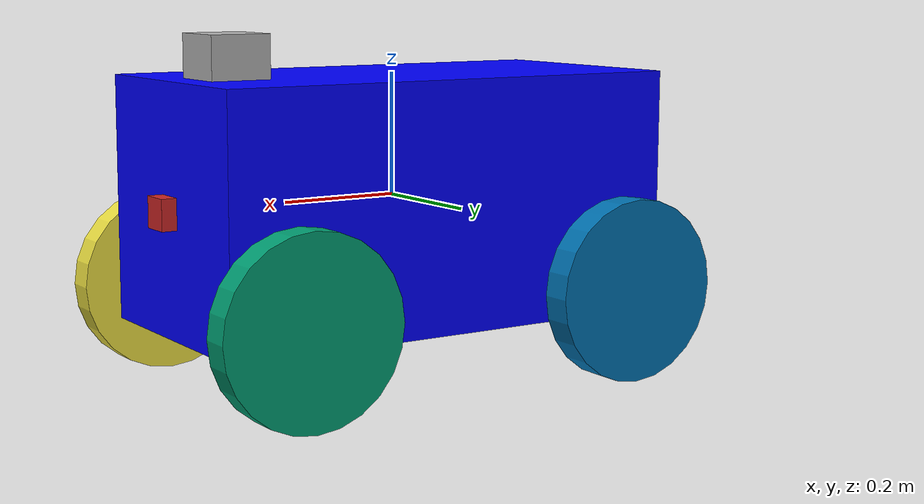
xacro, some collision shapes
<?xml version='1.0'?>

<robot name="service_robot" xmlns:xacro="http://www.ros.org/wiki/xacro">

  <xacro:property name="length_wheel" value="0.05" />
  <xacro:property name="radius_wheel" value="0.15" />
  <gazebo reference="body">
    <material>Gazebo/Blue</material>
</gazebo>

  <link name="robot_footprint"></link>

  <joint name="robot_footprint_joint" type="fixed">
    <origin xyz="0 0 0" rpy="0 0 0" />
    <parent link="robot_footprint"/>
    <child link="body" />
  </joint>

  <link name='body'>
    <pose>0 0 0.1 0 0 0</pose>

    <inertial>
      <mass value="8.0"/>
      <origin xyz="0 0 0" rpy=" 0 0 0"/>
      <inertia
          ixx="0.1" ixy="0" ixz="0"
          iyy="0.1" iyz="0"
          izz="0.1"
      />
    </inertial>

    <collision name='body_collision'>
      <origin xyz="0 0 0" rpy=" 0 0 0"/>
      <geometry>
        <box size=".8 .4 .4"/>
      </geometry>
    </collision>

    <visual name='body_visual'>
      <origin xyz="0 0 0" rpy=" 0 0 0"/>
      <geometry>
        <box size=".8 .4 .4"/>
      </geometry>
      <material name="blue">
          <color rgba="0 0 1 0"/>
      </material>
    </visual>
  </link>

  <link name="front_left_wheel">
       <visual name="front_wheel1">
	    <origin xyz="0 0 0" rpy="0 1.5707 1.5707"/>
		<geometry>
		  <cylinder length="${length_wheel}" radius="${radius_wheel}"/>
		</geometry>
	   </visual>

       <collision name="front_wheel1c">
	    <origin xyz="0 0 0" rpy="0 1.5707 1.5707"/>
		<geometry>
		  <cylinder length="${length_wheel}" radius="${radius_wheel}"/>
		</geometry>
	   </collision>
	  <inertial>
      <mass value="1.0"/>
      <origin xyz="0 0 0" rpy=" 0 0 0"/>
      <inertia
          ixx="0.1" ixy="0" ixz="0"
          iyy="0.1" iyz="0"
          izz="0.1"
        />
       </inertial>
   </link>

   <joint name="front_left_join" type="continuous">
     <origin xyz="0.3 0.25 -0.15" rpy="0 0 0" />
     <parent link="body"/>
     <child link="front_left_wheel" />
	 <axis xyz="0 1 0" rpy="0 0 0"/>
   </joint>

     <link name="front_right_wheel">
       <visual name="front_wheel2">
	    <origin xyz="0 0 0" rpy="0 1.5707 1.5707"/>
		<geometry>
		  <cylinder length="${length_wheel}" radius="${radius_wheel}"/>
		</geometry>
	   </visual>

       <collision name="front_wheel2c">
	    <origin xyz="0 0 0" rpy="0 1.5707 1.5707"/>
		<geometry>
		  <cylinder length="${length_wheel}" radius="${radius_wheel}"/>
		</geometry>
	   </collision>
	  <inertial>
      <mass value="1.0"/>
      <origin xyz="0.0 0 0" rpy=" 0 0 0"/>
      <inertia
          ixx="0.1" ixy="0" ixz="0"
          iyy="0.1" iyz="0"
          izz="0.1"
        />
       </inertial>
   </link>

   <joint name="front_right_join" type="continuous">
     <origin xyz="0.3 -0.25 -0.15" rpy="0 0 0" />
     <parent link="body"/>
     <child link="front_right_wheel" />
     <axis xyz="0 1 0" rpy="0 0 0"/>
   </joint>

  <link name="back_left_wheel">
       <visual name="back_wheel1">
	    <origin xyz="0 0 0" rpy="0 1.5707 1.5707"/>
		<geometry>
		  <cylinder length="${length_wheel}" radius="${radius_wheel}"/>
		</geometry>
	   </visual>

       <collision name="back_wheel1c">
	    <origin xyz="0 0 0" rpy="0 1.5707 1.5707"/>
		<geometry>
		  <cylinder length="${length_wheel}" radius="${radius_wheel}"/>
		</geometry>
	   </collision>
	  <inertial>
      <mass value="1.0"/>
      <origin xyz="0 0 0" rpy=" 0 0 0"/>
      <inertia
          ixx="0.1" ixy="0" ixz="0"
          iyy="0.1" iyz="0"
          izz="0.1"
        />
       </inertial>
   </link>

   <joint name="back_left_join" type="continuous">
     <origin xyz="-0.3 0.25 -0.15" rpy="0 0 0" />
     <parent link="body"/>
     <child link="back_left_wheel" />
	 <axis xyz="0 1 0" rpy="0 0 0"/>
   </joint>

     <link name="back_right_wheel">
       <visual name="back_wheel2">
	    <origin xyz="0 0 0" rpy="0 1.5707 1.5707"/>
		<geometry>
		  <cylinder length="${length_wheel}" radius="${radius_wheel}"/>
		</geometry>
	   </visual>

       <collision name="back_wheel2c">
	    <origin xyz="0 0 0" rpy="0 1.5707 1.5707"/>
		<geometry>
		  <cylinder length="${length_wheel}" radius="${radius_wheel}"/>
		</geometry>
	   </collision>
	  <inertial>
      <mass value="1.0"/>
      <origin xyz="0.0 0 0" rpy=" 0 0 0"/>
      <inertia
          ixx="0.1" ixy="0" ixz="0"
          iyy="0.1" iyz="0"
          izz="0.1"
        />
       </inertial>
   </link>

   <joint name="back_right_join" type="continuous">
     <origin xyz="-0.3 -0.25 -0.15" rpy="0 0 0" />
     <parent link="body"/>
     <child link="back_right_wheel" />
     <axis xyz="0 1 0" rpy="0 0 0"/>
   </joint>

    <link name="camera">
     <visual name="visual_camera">
       <origin xyz="0 0 0" rpy="0 0 0"/>
         <geometry>
           <box size="0.05 0.05 0.05"/>
         </geometry>
         <material name="red"/>
     </visual>
     <collision name="collision_camera">
         <origin xyz="0 0 0" rpy="0 0 0"/>
            <geometry>
              <box size="0.06 0.06 0.06"/>
         </geometry>
     </collision>
     <inertial>
       <mass value="0.05"/>
       <origin xyz="0 0 0" rpy=" 0 0 0"/>
       <inertia
          ixx="0.1" ixy="0" ixz="0"
          iyy="0.1" iyz="0"
          izz="0.1"
      />
     </inertial>
   </link>
    <joint type="fixed" name="camera_joint">
      <origin xyz="0.4 0 0" rpy="0 0 0"/>
      <child link="camera"/>
      <parent link="body"/>
      <axis xyz="0 1 0" rpy="0 0 0"/>
    </joint>
  <link name="hokuyo">
     <visual name="visual_hokuyo">
       <origin xyz="0 0 0" rpy="0 0 0"/>
         <geometry>
           <mesh filename="package://my_robot/meshes/hokuyo.dae"/>
         </geometry>
     </visual>
     <collision name="collision_hokuyo">
         <origin xyz="0 0 0" rpy="0 0 0"/>
            <geometry>
              <box size="0.1 0.1 0.1"/>
         </geometry>
     </collision>
     <inertial>
       <mass value="0.1"/>
       <origin xyz="0 0 0" rpy=" 0 0 0"/>
       <inertia
          ixx="0.000001" ixy="0" ixz="0"
          iyy="0.000001" iyz="0"
          izz="0.000001"
      />
     </inertial>
   </link>
    <joint type="fixed" name="hokuyo_joint">
      <origin xyz="0.3 0 0.22" rpy="0 0 0"/>
      <child link="hokuyo"/>
      <parent link="body"/>
      <axis xyz="0 1 0" rpy="0 0 0"/>
    </joint>

</robot>
